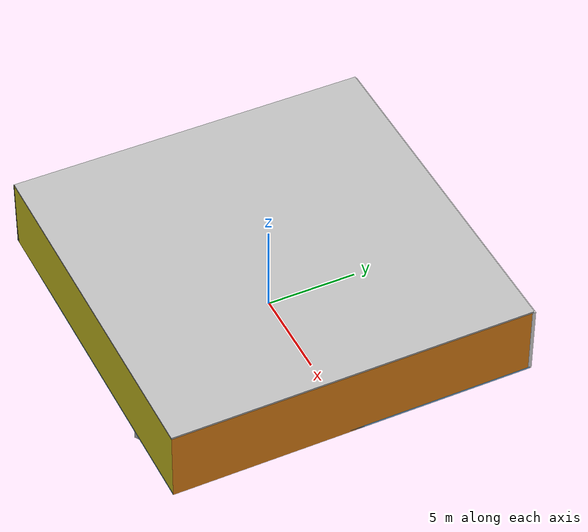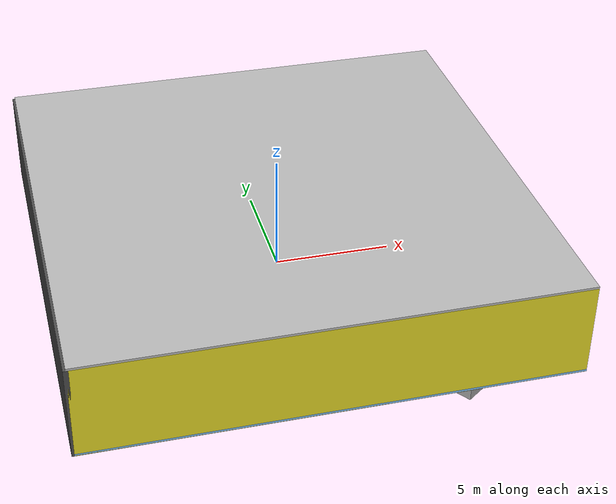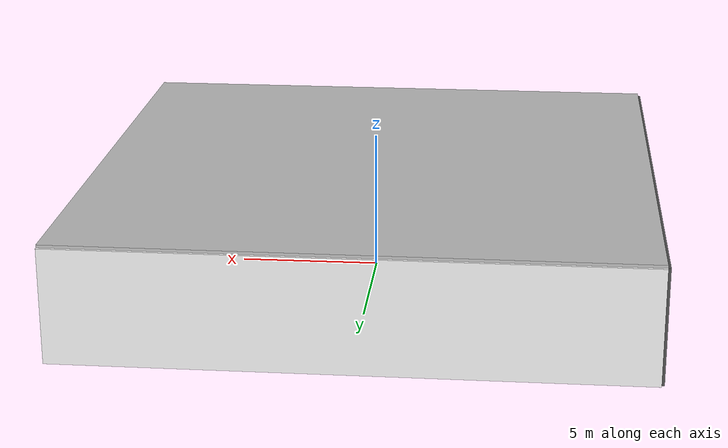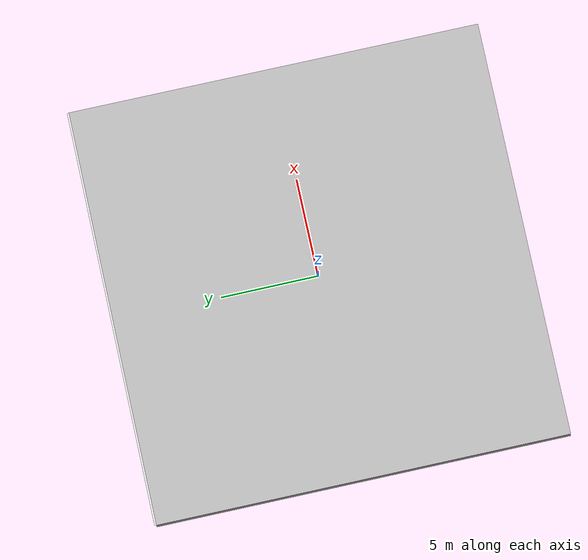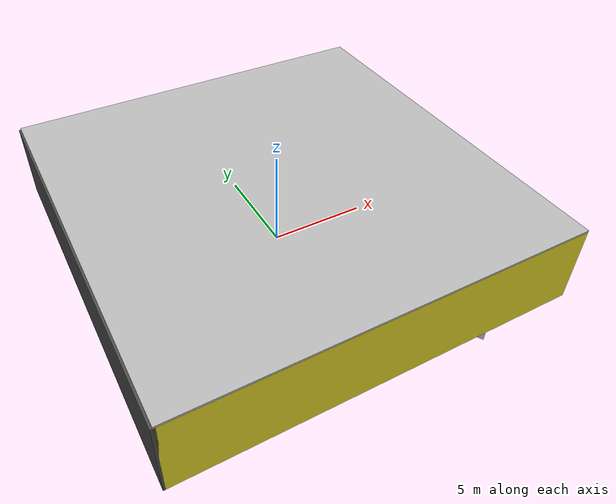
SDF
<sdf version="1.4">
 <world name="default">
  <physics type="ode">
   <max_step_size>0.001</max_step_size>
   <real_time_factor>1</real_time_factor>
   <real_time_update_rate>1000</real_time_update_rate>
   <gravity>0 0 -9.8</gravity>
  </physics>
  <scene><ambient>0.4 0.4 0.4 1</ambient><background>0.7 0.7 0.7 1</background><shadows>1</shadows></scene>
  <model name="Surrounding">
   <static>1</static>
   <link name="Ceiling">
    <collision name="Ceiling_Collision"><geometry><box><size>20 20 0.1</size></box></geometry></collision>
    <visual name="Ceiling_Visual">
     <geometry><box><size>20 20 0.1</size></box></geometry>
     <material>
      <script><uri>file://media/materials/scripts/gazebo.material</uri><name>Gazebo/LightOff</name></script>
     </material>
    </visual>
    <pose>0 0 4.05 0 0 0</pose>
   </link>
   <link name="Wall_South">
    <collision name="Wall_South_Collision">
     <geometry><box><size>20 0 4</size></box></geometry>
     <pose>0 0 2 0 -0 0</pose>
    </collision>
    <visual name="Wall_South_Visual">
     <pose>0 0 2 0 -0 0</pose>
     <geometry><box><size>20 0 4</size></box></geometry>
     <material>
      <script><uri>file://media/materials/scripts/gazebo.material</uri><name>Gazebo/Yellow</name></script>
     </material>
    </visual>
    <velocity_decay><linear>0</linear><angular>0</angular></velocity_decay>
    <pose>0 -10 0 0 -0 0</pose>
   </link>
   <link name="Wall_East">
    <collision name="Wall_21_Collision">
     <geometry><box><size>20 0 4</size></box></geometry>
     <pose>0 0 2 0 -0 0</pose>
    </collision>
    <visual name="Wall_21_Visual">
     <pose>0 0 2 0 -0 0</pose>
     <geometry><box><size>20 0 4</size></box></geometry>
     <material>
      <script><uri>file://media/materials/scripts/gazebo.material</uri><name>Gazebo/Orange</name></script>
     </material>
    </visual>
    <velocity_decay><linear>0</linear><angular>0</angular></velocity_decay>
    <pose>10 0 0 0 -0 1.5708</pose>
   </link>
   <link name="Wall_North">
    <collision name="Wall_22_Collision">
     <geometry><box><size>20 0.2 4</size></box></geometry>
     <pose>0 0 2 0 -0 0</pose>
    </collision>
    <visual name="Wall_22_Visual">
     <pose>0 0 2 0 -0 0</pose>
     <geometry><box><size>20 0.2 4</size></box></geometry>
     <material>
      <script><uri>file://media/materials/scripts/gazebo.material</uri><name>Gazebo/White</name></script>
     </material>
    </visual>
    <velocity_decay><linear>0</linear><angular>0</angular></velocity_decay>
    <pose>0 10 0 0 -0 0</pose>
   </link>
   <link name="Wall_West">
    <collision name="Wall_23_Collision">
     <geometry><box><size>20 0.2 4</size></box></geometry>
     <pose>0 0 2 0 -0 0</pose>
    </collision>
    <visual name="Wall_23_Visual">
     <pose>0 0 2 0 -0 0</pose>
     <geometry><box><size>20 0.2 4</size></box></geometry>
     <material>
      <script><uri>file://media/materials/scripts/gazebo.material</uri><name>Gazebo/DarkGrey</name></script>
     </material>
    </visual>
    <velocity_decay><linear>0</linear><angular>0</angular></velocity_decay>
    <pose>-10 0 0 0 0 -1.5708</pose>
   </link>
   <link name="Ground_link">
    <collision name="collision">
     <pose>0 0 .05 0 -0 0</pose>
     <geometry><box><size>20 20 0.1</size></box></geometry>
    </collision>
    <visual name="visual">
     <pose>0 0 .05 0 -0 0</pose>
     <geometry><box><size>20 20 0.1</size></box></geometry>
     <material>
      <script><uri>file://media/materials/scripts/gazebo.material</uri><name>Gazebo/SkyBlue</name></script>
     </material>
    </visual>
   </link>
   <static>1</static>
  </model>
  <spherical_coordinates>
   <surface_model>EARTH_WGS84</surface_model>
   <latitude_deg>0</latitude_deg>
   <longitude_deg>0</longitude_deg>
   <elevation>0</elevation>
   <heading_deg>0</heading_deg>
  </spherical_coordinates>
  <light name="lightball_0" type="diffuse">
   <diffuse>0.8 0.8 0.8 1</diffuse>
   <specular>0.2 0.2 0.2 1</specular>
   <attenuation>
    <range>100</range>
    <constant>0.7</constant>
    <linear>0.01</linear>
    <quadratic>0.001</quadratic>
   </attenuation>
   <direction>-0.5 0.1 -0.9</direction>
   <pose>2.82470623399 -5.30694864859 0.768813763669 0 0 0</pose>
  </light>
  <light name="lightball_1" type="diffuse">
   <diffuse>0.8 0.8 0.8 1</diffuse>
   <specular>0.2 0.2 0.2 1</specular>
   <attenuation>
    <range>100</range>
    <constant>0.7</constant>
    <linear>0.01</linear>
    <quadratic>0.001</quadratic>
   </attenuation>
   <direction>-0.5 0.1 -0.9</direction>
   <pose>-4.93671403271 -9.20497712681 1.09089290882 0 0 0</pose>
  </light>
  <include><uri>model://cabinet</uri><pose>-8.29706173462 7.85029501174 0 0 0 2.50957133887</pose></include>
  <include>
   <uri>model://textured_shapes</uri>
   <pose>-4.05700713185 -1.31497662153 0 0 0 2.76438066997</pose>
  </include>
  <include>
   <uri>model://construction_cone</uri>
   <pose>-4.50799523719 4.44125654184 0 0 0 2.69487101063</pose>
  </include>
  <include><uri>model://cabinet</uri><pose>-2.25177081687 -5.25850320325 0 0 0 1.39823883567</pose></include>
  <include>
   <uri>model://construction_cone</uri>
   <pose>-1.42606911387 4.15867966882 0 0 0 1.65208351075</pose>
  </include>
  <include><uri>model://table</uri><pose>1.52352466032 -7.16521554118 0 0 0 1.8707606239</pose></include>
  <include>
   <uri>model://textured_shapes</uri>
   <pose>0.959279238888 3.86985927577 0 0 0 2.85177032207</pose>
  </include>
  <include>
   <uri>model://textured_shapes</uri>
   <pose>4.47641485214 -8.06998847157 0 0 0 0.624296541574</pose>
  </include>
  <include>
   <uri>model://robocup_3Dsim_goal</uri>
   <pose>4.75694441978 -5.08721177595 0 0 0 0.346317588386</pose>
  </include>
  <include><uri>model://cabinet</uri><pose>5.15726244122 7.42949539896 0 0 0 1.39417737877</pose></include>
  <include><uri>model://cabinet</uri><pose>7.40616286101 -7.05294312301 0 0 0 1.45986649362</pose></include>
 </world>
</sdf>

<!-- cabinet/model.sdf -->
<sdf version="1.5">
  <model name="cabinet">
    <static>true</static>
    <link name="cabinet_bottom_plate">
      <inertial>
        <pose>0 0 -1 0 0 0</pose>
        <inertia>
          <ixx>2.050000</ixx>
          <ixy>0</ixy>
          <ixz>0</ixz>
          <iyy>2.050000</iyy>
          <iyz>0</iyz>
          <izz>2.050000</izz>
        </inertia>
        <mass>25.000000</mass>
      </inertial>
      <collision name="cabinet_bottom_plate_geom">
        <pose>0 0 0.010000 0 0 0</pose>
        <geometry>
          <box>
            <size>0.450000 0.450000 0.020000</size>
          </box>
        </geometry>
      </collision>
      <visual name="cabinet_bottom_plate_geom_visual">
        <pose>0 0 0.010000 0 0 0</pose>
        <geometry>
          <box>
            <size>0.450000 0.450000 0.020000</size>
          </box>
        </geometry>
        <material>
          <script>
            <uri>model://media/materials/scripts/gazebo.material</uri>
            <name>Gazebo/Wood</name>
          </script>
        </material>
      </visual>
      <collision name="cabinet_bottom_plate_geom_cabinet_back_plate">
        <pose>0.235000 0 0.510000 0 0 0</pose>
        <geometry>
          <box>
            <size>0.020000 0.450000 1.020000</size>
          </box>
        </geometry>
      </collision>
      <visual name="cabinet_bottom_plate_geom_cabinet_back_plate_visual">
        <pose>0.235000 0 0.510000 0 0 0</pose>
        <geometry>
          <box>
            <size>0.020000 0.450000 1.020000</size>
          </box>
        </geometry>
        <material>
          <script>
            <uri>model://media/materials/scripts/gazebo.material</uri>
            <name>Gazebo/Wood</name>
          </script>
        </material>
      </visual>
      <collision name="cabinet_bottom_plate_geom_cabinet_left_plate">
        <pose>0 0.235000 0.510000 0 0 0</pose>
        <geometry>
          <box>
            <size>0.450000 0.020000 1.020000</size>
          </box>
        </geometry>
      </collision>
      <visual name="cabinet_bottom_plate_geom_cabinet_left_plate_visual">
        <pose>0 0.235000 0.510000 0 0 0</pose>
        <geometry>
          <box>
            <size>0.450000 0.020000 1.020000</size>
          </box>
        </geometry>
        <material>
          <script>
            <uri>model://media/materials/scripts/gazebo.material</uri>
            <name>Gazebo/Wood</name>
          </script>
        </material>
      </visual>
      <collision name="cabinet_bottom_plate_geom_cabinet_middle_plate">
        <pose>0 0 0.510000 0 0 0</pose>
        <geometry>
          <box>
            <size>0.450000 0.450000 0.020000</size>
          </box>
        </geometry>
      </collision>
      <visual name="cabinet_bottom_plate_geom_cabinet_middle_plate_visual">
        <pose>0 0 0.510000 0 0 0</pose>
        <geometry>
          <box>
            <size>0.450000 0.450000 0.020000</size>
          </box>
        </geometry>
        <material>
          <script>
            <uri>model://media/materials/scripts/gazebo.material</uri>
            <name>Gazebo/Wood</name>
          </script>
        </material>
      </visual>
      <collision name="cabinet_bottom_plate_geom_cabinet_right_plate">
        <pose>0 -0.235000 0.510000 0 0 0</pose>
        <geometry>
          <box>
            <size>0.450000 0.020000 1.020000</size>
          </box>
        </geometry>
      </collision>
      <visual name="cabinet_bottom_plate_geom_cabinet_right_plate_visual">
        <pose>0 -0.235000 0.510000 0 0 0</pose>
        <geometry>
          <box>
            <size>0.450000 0.020000 1.020000</size>
          </box>
        </geometry>
        <material>
          <script>
            <uri>model://media/materials/scripts/gazebo.material</uri>
            <name>Gazebo/Wood</name>
          </script>
        </material>
      </visual>
      <collision name="cabinet_bottom_plate_geom_cabinet_top_plate">
        <pose>0 0 1.010000 0 0 0</pose>
        <geometry>
          <box>
            <size>0.450000 0.450000 0.020000</size>
          </box>
        </geometry>
      </collision>
      <visual name="cabinet_bottom_plate_geom_cabinet_top_plate_visual">
        <pose>0 0 1.010000 0 0 0</pose>
        <geometry>
          <box>
            <size>0.450000 0.450000 0.020000</size>
          </box>
        </geometry>
        <material>
          <script>
            <uri>model://media/materials/scripts/gazebo.material</uri>
            <name>Gazebo/Wood</name>
          </script>
        </material>
      </visual>
    </link>
  </model>
</sdf>

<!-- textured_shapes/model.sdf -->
<sdf version="1.6">
  <model name="textured_shapes">
    <pose>0 0 0.5 0 0 0</pose>
    <link name="box">
      <pose>0 -1.5 0 0 0 0</pose>
      <collision name="collision">
        <geometry>
          <box>
            <size>1 1 1</size>
          </box>
        </geometry>
      </collision>
      <visual name="visual">
        <geometry>
          <box>
            <size>1 1 1</size>
          </box>
        </geometry>
        <material>
          <script>
            <uri>model://../model_source/models/textured_shapes/materials/scripts</uri>
            <uri>model://../model_source/models/textured_shapes/materials/textures</uri>
            <name>TexturedShape/Squares</name>
          </script>
        </material>
      </visual>
    </link>
    <link name="sphere">
      <collision name="collision">
        <geometry>
          <sphere>
            <radius>0.5</radius>
          </sphere>
        </geometry>
      </collision>
      <visual name="visual">
        <geometry>
          <sphere>
            <radius>0.5</radius>
          </sphere>
        </geometry>
        <material>
          <script>
            <uri>model://../model_source/models/textured_shapes/materials/scripts</uri>
            <uri>model://../model_source/models/textured_shapes/materials/textures</uri>
            <name>TexturedShape/Squares</name>
          </script>
        </material>
      </visual>
    </link>
    <link name="cylinder">
      <pose>0 1.5 0 0 0 0</pose>
      <collision name="collision">
        <geometry>
          <cylinder>
            <radius>0.5</radius>
            <length>1</length>
          </cylinder>
        </geometry>
      </collision>
      <visual name="visual">
        <geometry>
          <cylinder>
            <radius>0.5</radius>
            <length>1</length>
          </cylinder>
        </geometry>
        <material>
          <script>
            <uri>model://../model_source/models/textured_shapes/materials/scripts</uri>
            <uri>model://../model_source/models/textured_shapes/materials/textures</uri>
            <name>TexturedShape/Squares</name>
          </script>
        </material>
      </visual>
    </link>
  </model>
</sdf>

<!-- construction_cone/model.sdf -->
<sdf version="1.5">
  <model name="Construction Cone">
    <link name="link">
      <collision name="collision">
        <geometry>
          <mesh>
            <scale>10 10 10</scale>
            <uri>file://isr-testbed/construction_cone/meshes/construction_cone.dae</uri>
          </mesh>
        </geometry>
      </collision>
      <visual name="visual">
        <geometry>
          <mesh>
            <scale>10 10 10</scale>
            <uri>file://isr-testbed/construction_cone/meshes/construction_cone.dae</uri>
          </mesh>
        </geometry>
      </visual>
    </link>
  </model>
</sdf>

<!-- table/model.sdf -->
<sdf version="1.5">
  <model name="table">
    <static>true</static>
    <link name="link">
      <collision name="surface">
        <pose>0 0 1.0 0 0 0</pose>
        <geometry>
          <box>
            <size>1.5 0.8 0.03</size>
          </box>
        </geometry>
        <surface>
          <friction>
            <ode>
              <mu>0.6</mu>
              <mu2>0.6</mu2>
            </ode>
          </friction>
        </surface>
      </collision>
      <visual name="visual1">
        <pose>0 0 1.0 0 0 0</pose>
        <geometry>
          <box>
            <size>1.5 0.8 0.03</size>
          </box>
        </geometry>
        <material>
          <script>
            <uri>model://media/materials/scripts/gazebo.material</uri>
            <name>Gazebo/Wood</name>
          </script>
        </material>
      </visual>
      <collision name="front_left_leg">
        <pose>0.68 0.38 0.5 0 0 0</pose>
        <geometry>
          <cylinder>
            <radius>0.02</radius>
            <length>1.0</length>
          </cylinder>
        </geometry>
      </collision>
      <visual name="front_left_leg">
        <pose>0.68 0.38 0.5 0 0 0</pose>
        <geometry>
          <cylinder>
            <radius>0.02</radius>
            <length>1.0</length>
          </cylinder>
        </geometry>
        <material>
          <script>
            <uri>model://media/materials/scripts/gazebo.material</uri>
            <name>Gazebo/Grey</name>
          </script>
        </material>
      </visual>
      <collision name="front_right_leg">
        <pose>0.68 -0.38 0.5 0 0 0</pose>
        <geometry>
          <cylinder>
            <radius>0.02</radius>
            <length>1.0</length>
          </cylinder>
        </geometry>
      </collision>
      <visual name="front_right_leg">
        <pose>0.68 -0.38 0.5 0 0 0</pose>
        <geometry>
          <cylinder>
            <radius>0.02</radius>
            <length>1.0</length>
          </cylinder>
        </geometry>
        <material>
          <script>
            <uri>model://media/materials/scripts/gazebo.material</uri>
            <name>Gazebo/Grey</name>
          </script>
        </material>
      </visual>
      <collision name="back_right_leg">
        <pose>-0.68 -0.38 0.5 0 0 0</pose>
        <geometry>
          <cylinder>
            <radius>0.02</radius>
            <length>1.0</length>
          </cylinder>
        </geometry>
      </collision>
      <visual name="back_right_leg">
        <pose>-0.68 -0.38 0.5 0 0 0</pose>
        <geometry>
          <cylinder>
            <radius>0.02</radius>
            <length>1.0</length>
          </cylinder>
        </geometry>
        <material>
          <script>
            <uri>model://media/materials/scripts/gazebo.material</uri>
            <name>Gazebo/Grey</name>
          </script>
        </material>
      </visual>
      <collision name="back_left_leg">
        <pose>-0.68 0.38 0.5 0 0 0</pose>
        <geometry>
          <cylinder>
            <radius>0.02</radius>
            <length>1.0</length>
          </cylinder>
        </geometry>
      </collision>
      <visual name="back_left_leg">
        <pose>-0.68 0.38 0.5 0 0 0</pose>
        <geometry>
          <cylinder>
            <radius>0.02</radius>
            <length>1.0</length>
          </cylinder>
        </geometry>
        <material>
          <script>
            <uri>model://media/materials/scripts/gazebo.material</uri>
            <name>Gazebo/Grey</name>
          </script>
        </material>
      </visual>
    </link>
  </model>
</sdf>

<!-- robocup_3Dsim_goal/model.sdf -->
<sdf version="1.5">
  <model name="robocup_3d_goal">
    <static>true</static>
    <link name="left_post">
      <pose>0 1.05 0.45 0 0 0</pose>
      <collision name="collision">
        <geometry>
          <cylinder>
            <radius>0.05</radius>
            <length>0.9</length>
          </cylinder>
        </geometry>
      </collision>
      <visual name="visual">
        <geometry>
          <cylinder>
            <radius>0.05</radius>
            <length>0.9</length>
          </cylinder>
        </geometry>
        <material>
          <script>
            <uri>file://media/materials/scripts/gazebo.material</uri>
            <name>Gazebo/ZincYellow</name>
          </script>
        </material>
      </visual>
    </link>
    <link name="left_support_horiz_lower">
      <pose>0.30 1.05 0.01 0 0 0</pose>
      <collision name="collision">
        <geometry>
          <box>
            <size>0.50 0.02 0.02</size>
          </box>
        </geometry>
      </collision>
      <visual name="visual">
        <geometry>
          <box>
            <size>0.50 0.02 0.02</size>
          </box>
        </geometry>
        <material>
          <script>
            <uri>file://media/materials/scripts/gazebo.material</uri>
            <name>Gazebo/White</name>
          </script>
        </material>
      </visual>
    </link>
    <link name="left_support_horiz_upper">
      <pose>0.30 1.05 0.79 0 0 0</pose>
      <collision name="collision">
        <geometry>
          <box>
            <size>0.50 0.02 0.02</size>
          </box>
        </geometry>
      </collision>
      <visual name="visual">
        <geometry>
          <box>
            <size>0.50 0.02 0.02</size>
          </box>
        </geometry>
        <material>
          <script>
            <uri>file://media/materials/scripts/gazebo.material</uri>
            <name>Gazebo/White</name>
          </script>
        </material>
      </visual>
    </link>
    <link name="left_support_vertical">
      <pose>0.56 1.05 0.4 0 1.5708 0</pose>
      <collision name="collision">
        <geometry>
          <box>
            <size>0.80 0.02 0.02</size>
          </box>
        </geometry>
      </collision>
      <visual name="visual">
        <geometry>
          <box>
            <size>0.80 0.02 0.02</size>
          </box>
        </geometry>
        <material>
          <script>
            <uri>file://media/materials/scripts/gazebo.material</uri>
            <name>Gazebo/White</name>
          </script>
        </material>
      </visual>
    </link>
    <link name="right_support_horiz_lower">
      <pose>0.30 -1.05 0.01 0 0 0</pose>
      <collision name="collision">
        <geometry>
          <box>
            <size>0.50 0.02 0.02</size>
          </box>
        </geometry>
      </collision>
      <visual name="visual">
        <geometry>
          <box>
            <size>0.50 0.02 0.02</size>
          </box>
        </geometry>
        <material>
          <script>
            <uri>file://media/materials/scripts/gazebo.material</uri>
            <name>Gazebo/White</name>
          </script>
        </material>
      </visual>
    </link>
    <link name="right_support_horiz_upper">
      <pose>0.30 -1.05 0.79 0 0 0</pose>
      <collision name="collision">
        <geometry>
          <box>
            <size>0.50 0.02 0.02</size>
          </box>
        </geometry>
      </collision>
      <visual name="visual">
        <geometry>
          <box>
            <size>0.50 0.02 0.02</size>
          </box>
        </geometry>
        <material>
          <script>
            <uri>file://media/materials/scripts/gazebo.material</uri>
            <name>Gazebo/White</name>
          </script>
        </material>
      </visual>
    </link>
    <link name="right_support_vertical">
      <pose>0.56 -1.05 0.4 0 1.5708 0</pose>
      <collision name="collision">
        <geometry>
          <box>
            <size>0.80 0.02 0.02</size>
          </box>
        </geometry>
      </collision>
      <visual name="visual">
        <geometry>
          <box>
            <size>0.80 0.02 0.02</size>
          </box>
        </geometry>
        <material>
          <script>
            <uri>file://media/materials/scripts/gazebo.material</uri>
            <name>Gazebo/White</name>
          </script>
        </material>
      </visual>
    </link>
    <link name="center_support_horiz_lower">
      <pose>0.56 0 0.01 0 1.5708 0</pose>
      <collision name="collision">
        <geometry>
          <box>
            <size>0.02 2.08 0.02</size>
          </box>
        </geometry>
      </collision>
      <visual name="visual">
        <geometry>
          <box>
            <size>0.02 2.08 0.02</size>
          </box>
        </geometry>
        <material>
          <script>
            <uri>file://media/materials/scripts/gazebo.material</uri>
            <name>Gazebo/White</name>
          </script>
        </material>
      </visual>
    </link>
    <link name="center_support_horiz_upper">
      <pose>0.56 0 0.79 0 1.5708 0</pose>
      <collision name="collision">
        <geometry>
          <box>
            <size>0.02 2.08 0.02</size>
          </box>
        </geometry>
      </collision>
      <visual name="visual">
        <geometry>
          <box>
            <size>0.02 2.08 0.02</size>
          </box>
        </geometry>
        <material>
          <script>
            <uri>file://media/materials/scripts/gazebo.material</uri>
            <name>Gazebo/White</name>
          </script>
        </material>
      </visual>
    </link>
    <link name="right_post">
      <pose>0 -1.05 0.45 0 0 0</pose>
      <collision name="collision">
        <geometry>
          <cylinder>
            <radius>0.05</radius>
            <length>0.9</length>
          </cylinder>
        </geometry>
      </collision>
      <visual name="visual">
        <geometry>
          <cylinder>
            <radius>0.05</radius>
            <length>0.9</length>
          </cylinder>
        </geometry>
        <material>
          <script>
            <uri>file://media/materials/scripts/gazebo.material</uri>
            <name>Gazebo/ZincYellow</name>
          </script>
        </material>
      </visual>
    </link>
    <link name="crossbar">
      <pose>0 0 0.85 1.57 1.57 0</pose>
      <collision name="collision">
        <geometry>
          <cylinder>
            <radius>0.05</radius>
            <length>2.0</length>
          </cylinder>
        </geometry>
      </collision>
      <visual name="visual">
        <geometry>
          <cylinder>
            <radius>0.05</radius>
            <length>2.0</length>
          </cylinder>
        </geometry>
        <material>
          <script>
            <uri>file://media/materials/scripts/gazebo.material</uri>
            <name>Gazebo/ZincYellow</name>
          </script>
        </material>
      </visual>
    </link>
    <link name="center_net">
      <pose>0.56 0 0.40 0 0 0</pose>
      <collision name="collision">
        <geometry>
          <box>
            <size>0.01 2.1 0.80</size>
          </box>
        </geometry>
      </collision>
      <visual name="visual">
        <geometry>
          <box>
            <size>0.01 2.1 0.80</size>
          </box>
        </geometry>
        <material>
          <script>
            <uri>model://../model_source/models/robocup09_spl_field/materials/scripts/</uri>
            <uri>model://../model_source/models/robocup09_spl_field/materials/textures/</uri>
            <name>RoboCup/Net</name>
          </script>
        </material>
      </visual>
    </link>
    <link name="left_net">
      <pose>0.30 1.05 0.40 0 0 0</pose>
      <collision name="collision">
        <geometry>
          <box>
            <size>0.50 0.01 0.76</size>
          </box>
        </geometry>
      </collision>
      <visual name="visual">
        <geometry>
          <box>
            <size>0.50 0.01 0.76</size>
          </box>
        </geometry>
        <material>
          <script>
            <uri>model://../model_source/models/robocup09_spl_field/materials/scripts/</uri>
            <uri>model://../model_source/models/robocup09_spl_field/materials/textures/</uri>
            <name>RoboCup/Net</name>
          </script>
        </material>
      </visual>
    </link>
    <link name="right_net">
      <pose>0.30 -1.05 0.40 0 0 0</pose>
      <collision name="collision">
        <geometry>
          <box>
            <size>0.50 0.01 0.76</size>
          </box>
        </geometry>
      </collision>
      <visual name="visual">
        <geometry>
          <box>
            <size>0.50 0.01 0.76</size>
          </box>
        </geometry>
        <material>
          <script>
            <uri>model://../model_source/models/robocup09_spl_field/materials/scripts/</uri>
            <uri>model://../model_source/models/robocup09_spl_field/materials/textures/</uri>
            <name>RoboCup/Net</name>
          </script>
        </material>
      </visual>
    </link>
  </model>
</sdf>
